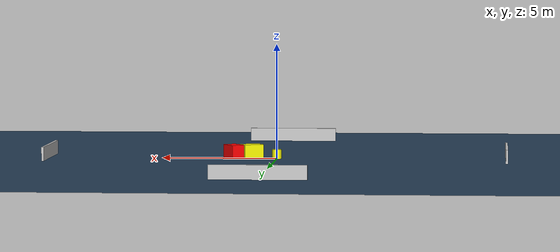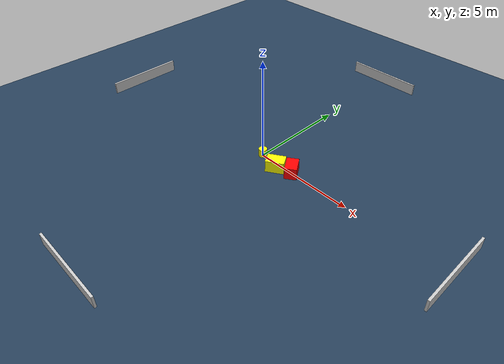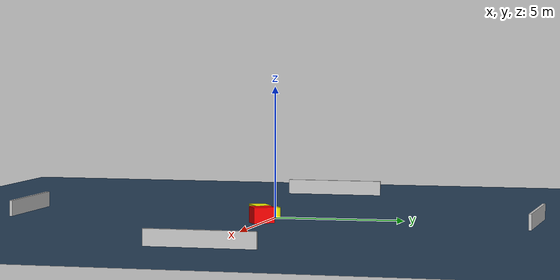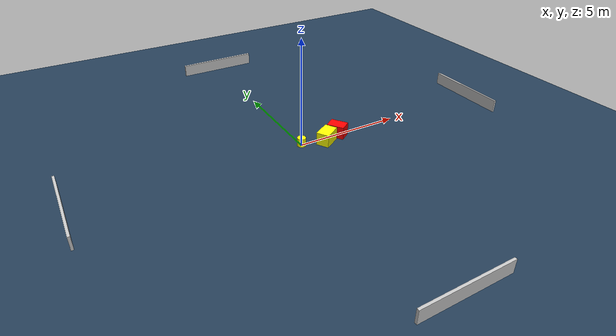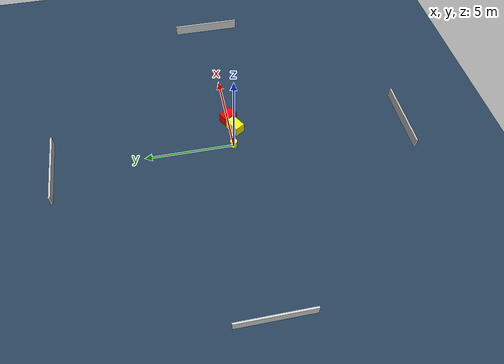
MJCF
<?xml version="1.0" ?>
<mujoco model="generated_environment">
  <option timestep="0.01" integrator="RK4" cone="elliptic"/>
  <default>
    <geom density="1"/>
  </default>
  <asset>
    <texture builtin="gradient" height="3072" name="skybox" rgb1="0.3 0.5 0.7" rgb2="0 0 0" type="skybox" width="512"/>
    <texture builtin="checker" height="300" name="groundplane" rgb1="0.2 0.3 0.4" rgb2="0.1 0.2 0.3" type="2d" width="300"/>
    <material name="groundplane" reflectance="0.2" texrepeat="5 5" texture="groundplane"/>
  </asset>
  <worldbody>
    <light dir="0 0 -1" directional="true" pos="0 0 1.5"/>
    <geom condim="3" friction="0.5 0.005 0.001" material="groundplane" name="floor" pos="0 0 0" size="0 0 0.05" type="plane"/>
    <body name="walls">
      <geom name="wall_1" condim="4" pos="-10.0 0.0 0.3" rgba="0.800000011920929 0.800000011920929 0.800000011920929 1.0" size="0.05 2.0 0.3" type="box"/>
      <geom name="wall_2" condim="4" pos="10.0 0.0 0.3" rgba="0.800000011920929 0.800000011920929 0.800000011920929 1.0" size="0.05 2.0 0.3" type="box"/>
      <geom name="wall_3" condim="4" pos="0.0 -10.0 0.3" rgba="0.800000011920929 0.800000011920929 0.800000011920929 1.0" size="2.0 0.05 0.3" type="box"/>
      <geom name="wall_4" condim="4" pos="0.0 10.0 0.3" rgba="0.800000011920929 0.800000011920929 0.800000011920929 1.0" size="2.0 0.05 0.3" type="box"/>
    </body>
    <body name="robot">
      <joint name="joint_x" type="slide" pos="0 0 0" axis="1 0 0"/>
      <joint name="joint_y" type="slide" pos="0 0 0" axis="0 1 0"/>
      <geom name="robot" type="cylinder" pos="0.0 0.0 0.2" size="0.2 0.2 0.0" mass="5.0" friction="1.0 0.005 0.0001" condim="4" rgba="1.0 1.0 0.0 1.0"/>
    </body>
    <body name="obstacle_1_movable">
      <geom name="obstacle_1_movable" condim="4" pos="1.144700133085975 -0.2938881931057516 0.3" euler="0 0 31.379115165170933" friction="0.0 0.005 0.001" rgba="1.0 1.0 0.0 1.0" size="0.44103089800424683 0.29774472275170505 0.3" type="box" mass="0.1"/>
      <joint type="free"/>
    </body>
    <body name="obstacle_2_static">
      <geom name="obstacle_2_static" condim="4" pos="1.894875895486386 -0.021560131406267214 0.3" euler="0 0 214.15145683555207" friction="0.0 0.005 0.001" rgba="1.0 0.0 0.0 1.0" size="0.28836300357556544 0.406932481074269 0.3" type="box"/>
    </body>
  </worldbody>
  <actuator>
    <motor name="actuator_x" joint="joint_x" gear="1" ctrlrange="-1 1"/>
    <motor name="actuator_y" joint="joint_y" gear="1" ctrlrange="-1 1"/>
  </actuator>
</mujoco>
